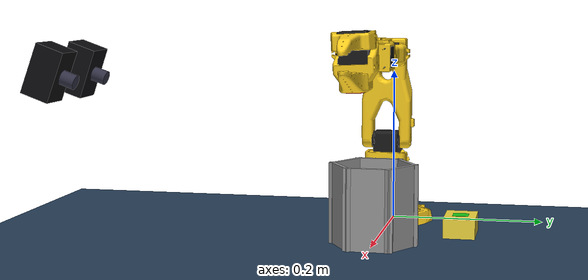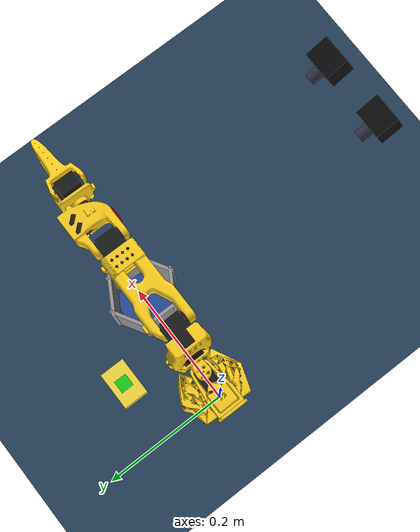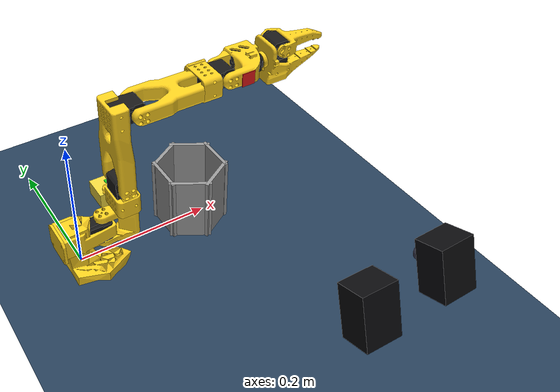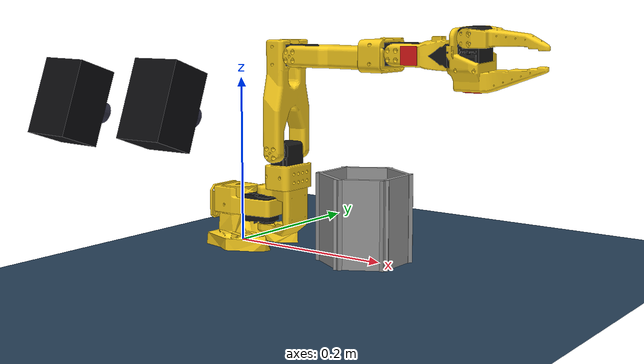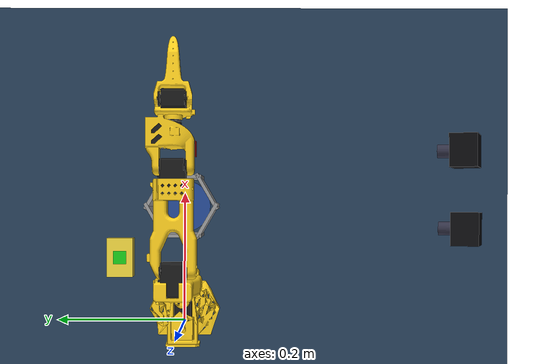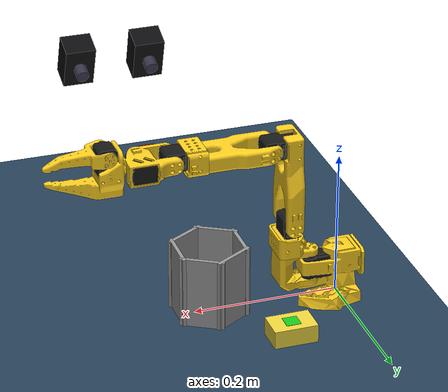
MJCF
<mujoco model="scene_pickplace">
  <include file="so101.xml" />

  <visual>
    <headlight diffuse="0.6 0.6 0.6" ambient="0.3 0.3 0.3" specular="0 0 0" />
    <rgba haze="0.15 0.25 0.35 1" />
    <global azimuth="160" elevation="-20" />
  </visual>

  <asset>
    <texture type="skybox" builtin="gradient" rgb1="0.3 0.5 0.7" rgb2="0 0 0" width="512"
        height="3072" />
    <texture type="2d" name="groundplane" builtin="checker" mark="edge" rgb1="0.2 0.3 0.4"
        rgb2="0.1 0.2 0.3"
        markrgb="0.8 0.8 0.8" width="300" height="300" />
    <material name="groundplane" texture="groundplane" texuniform="true" texrepeat="5 5"
        reflectance="0.2" />
  </asset>

  <worldbody>
    <light pos="0 0 3.5" dir="0 0 -1" directional="true" />
    <geom name="floor" size="0 0 0.05" pos="0 0 0" type="plane" material="groundplane" />

    <body name="cube" pos="0.10 0.10 0.0125">
      <freejoint name="cube_joint"/>
      <geom name="cube_geom" type="box" size="0.03 0.02 0.0125" mass="0.008"
          rgba="0.95 0.85 0.25 1" condim="6" friction="1.5 0.01 0.001"
          contype="1" conaffinity="1" solref="0.01 1"/>
      <site name="cube_tag" type="box" group="2" size="0.01 0.01 0.0005"
          pos="0 0 0.0125" euler="0 0 1.5708" rgba="0.1 0.8 0.1 1"/>
    </body>

    <!-- Place target: visual-only flat cylinder -->
    <site name="place_target" type="cylinder" size="0.04 0.01" pos="0.18 0 0.01"
        rgba="0.2 0.4 1 0.4"/>

    <!-- Hexagonal wall: 6 boxes, R=0.05, thickness=0.005, height=3cm -->
    <body name="ring" pos="0.18 0 0">
      <geom name="ring_wall_0" type="box" size="0.00250 0.03000 0.05" pos="-0.02165 0.03750 0.05" euler="0 0 -4.18879"
          rgba="0.6 0.6 0.6 1" contype="2" conaffinity="1"/>
      <geom name="ring_wall_1" type="box" size="0.00250 0.03000 0.05" pos="-0.04330 0.00000 0.05" euler="0 0 -3.14159"
          rgba="0.6 0.6 0.6 1" contype="2" conaffinity="1"/>
      <geom name="ring_wall_2" type="box" size="0.00250 0.03000 0.05" pos="-0.02165 -0.03750 0.05" euler="0 0 -2.09440"
          rgba="0.6 0.6 0.6 1" contype="2" conaffinity="1"/>
      <geom name="ring_wall_3" type="box" size="0.00250 0.03000 0.05" pos="0.02165 -0.03750 0.05" euler="0 0 -1.04720"
          rgba="0.6 0.6 0.6 1" contype="2" conaffinity="1"/>
      <geom name="ring_wall_4" type="box" size="0.00250 0.03000 0.05" pos="0.04330 0.00000 0.05" euler="0 0 0"
          rgba="0.6 0.6 0.6 1" contype="2" conaffinity="1"/>
      <geom name="ring_wall_5" type="box" size="0.00250 0.03000 0.05" pos="0.02165 0.03750 0.05" euler="0 0 1.04720"
          rgba="0.6 0.6 0.6 1" contype="2" conaffinity="1"/>
    </body>
  </worldbody>
</mujoco>

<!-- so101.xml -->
<mujoco model="so101">
  <option integrator="implicitfast" timestep="0.0066666667" cone="elliptic"
   iterations="10" ls_iterations="20" impratio="10"/>

  <compiler angle="radian" meshdir="assets" autolimits="true"/>

  <visual>
    <scale contactwidth="0.1" contactheight="0.05" forcewidth="0.02"
     framelength="0.75" framewidth="0.025" camera="0.2"/>
  </visual>

  <default>
    <mesh maxhullvert="128"/>

    <default class="so101">
      <joint damping="1" frictionloss="0.1" armature="0.005"/>
      <position kp="50"/>
      <default class="visual">
        <geom type="mesh" contype="0" conaffinity="0" group="2"/>
      </default>
      <default class="collision">
        <geom group="3" condim="3"/>
      </default>
      <default class="collision_gripper">
        <geom group="3" condim="6" friction="1.5 0.02 0.002" solref="0.01 1" priority="1"
         rgba="1.0 0 0 1.0" mass="0"/>
      </default>
      <default class="collision_gripper_mesh">
        <geom group="4" condim="6" friction="1.5 0.02 0.002" solref="0.01 1" priority="1"
         rgba="1.0 0 0 1.0" mass="0"/>
      </default>
    </default>

    <default class="sts3215">
      <geom contype="0" conaffinity="0"/>
      <joint damping="0.9581" frictionloss="0.0506" armature="0.00601"/>
      <position kv="1.5185" forcerange="-1.96 1.96" timeconst="0.005"/>
    </default>

    <default class="backlash">
      <joint damping="0.01" frictionloss="0" armature="0.01" limited="true" range="-0.0034907 0.0034907"/>
    </default>
  </default>

  <asset>
    <mesh file="waveshare_mounting_plate_so101_v2.stl"/>
    <mesh file="sts3215_03a_v1.stl"/>
    <mesh file="motor_holder_so101_base_v1.stl"/>
    <mesh file="wrist_roll_follower_so101_v1.stl"/>
    <mesh file="moving_jaw_so101_v1.stl"/>
    <mesh file="base_motor_holder_so101_v1.stl"/>
    <mesh file="upper_arm_so101_v1.stl"/>
    <mesh file="wrist_roll_pitch_so101_v2.stl"/>
    <mesh file="under_arm_so101_v1.stl"/>
    <mesh file="rotation_pitch_so101_v1.stl"/>
    <mesh file="motor_holder_so101_wrist_v1.stl"/>
    <mesh file="sts3215_03a_no_horn_v1.stl"/>
    <mesh file="base_so101_v2.stl"/>
    <mesh file="moving_jaw_so101_gripper_v1.stl"/>
    <!-- Gripper collision meshes. -->
    <mesh maxhullvert="64" file="wrist_roll_follower_so101_gripper_part0_v1.stl"/>
    <mesh maxhullvert="64" file="moving_jaw_so101_gripper_part0_v1.stl"/>
    <mesh maxhullvert="64" file="moving_jaw_so101_gripper_part1_v1.stl"/>
    <material name="base_motor_holder_so101_v1_material" rgba="1 0.82 0.12 1"/>
    <material name="base_so101_v2_material" rgba="1 0.82 0.12 1"/>
    <material name="sts3215_03a_v1_material" rgba="0.1 0.1 0.1 1"/>
    <material name="waveshare_mounting_plate_so101_v2_material" rgba="1 0.82 0.12 1"/>
    <material name="motor_holder_so101_base_v1_material" rgba="1 0.82 0.12 1"/>
    <material name="rotation_pitch_so101_v1_material" rgba="1 0.82 0.12 1"/>
    <material name="upper_arm_so101_v1_material" rgba="1 0.82 0.12 1"/>
    <material name="under_arm_so101_v1_material" rgba="1 0.82 0.12 1"/>
    <material name="motor_holder_so101_wrist_v1_material" rgba="1 0.82 0.12 1"/>
    <material name="sts3215_03a_no_horn_v1_material" rgba="0.1 0.1 0.1 1.0"/>
    <material name="wrist_roll_pitch_so101_v2_material" rgba="1 0.82 0.12 1"/>
    <material name="wrist_roll_follower_so101_v1_material" rgba="1 0.82 0.12 1"/>
    <material name="moving_jaw_so101_v1_material" rgba="1 0.82 0.12 1"/>
  </asset>

  <worldbody>
    <body name="tag_cam_mount" pos="0.150900 -0.386796 0.207672"
          quat="0.816264 0.577600 0.000976 -0.009526">
      <camera name="tag_cam"/>
      <geom name="tag_cam_body" type="box" size="0.022 0.032 0.018" group="1"
            rgba="0.05 0.05 0.06 1" contype="0" conaffinity="0"/>
      <geom name="tag_cam_lens" type="cylinder" size="0.009 0.012" pos="0 0 -0.024"
            group="1" rgba="0.2 0.2 0.28 1" contype="0" conaffinity="0"/>
    </body>
    <body name="tag_cam_aux_mount" pos="0.254350 -0.384744 0.210519"
          quat="0.819790 0.572651 0.000264 0.004032">
      <camera name="tag_cam_aux"/>
      <geom name="tag_cam_aux_body" type="box" size="0.022 0.032 0.018" group="1"
            rgba="0.05 0.05 0.06 1" contype="0" conaffinity="0"/>
      <geom name="tag_cam_aux_lens" type="cylinder" size="0.009 0.012" pos="0 0 -0.024"
            group="1" rgba="0.2 0.2 0.28 1" contype="0" conaffinity="0"/>
    </body>
    <!-- Link base -->
    <body name="base" pos="0 0 0" quat="1 0 0 0" childclass="so101">
      <inertial pos="0.0137179 -5.19711e-05 0.0334843" mass="0.147" fullinertia="0.000114686 0.000136117 0.000130364 -4.59787e-07 4.97151e-06 9.75275e-08"/>
      <!-- Part base_motor_holder_so101_v1 -->
      <geom type="mesh" class="visual" pos="-0.006365 -9.9e-05 -0.0024" quat="1 1 1 1" mesh="base_motor_holder_so101_v1" material="base_motor_holder_so101_v1_material"/>
      <!-- Part base_so101_v2 -->
      <geom type="mesh" class="visual" pos="-0.006365 0 -0.0024" quat="1 1 1 1" mesh="base_so101_v2" material="base_so101_v2_material"/>
      <!-- Part sts3215_03a_v1 -->
      <geom type="mesh" class="visual" pos="0.0263353 0 0.0437" quat="1 0 0 0" mesh="sts3215_03a_v1" material="sts3215_03a_v1_material"/>
      <!-- Part waveshare_mounting_plate_so101_v2 -->
      <geom type="mesh" class="visual" pos="-0.0309827 -0.000199 0.0474" quat="1 1 1 1" mesh="waveshare_mounting_plate_so101_v2" material="waveshare_mounting_plate_so101_v2_material"/>
      <!-- Frame baseframe -->
      <site group="3" name="baseframe" pos="0 0 0" quat="1 0 0 0"/>
      <!-- Link shoulder -->
      <body name="shoulder" pos="0.0388353 0 0.0624" quat="0 0 -1 0">
        <!-- Joint from base to shoulder -->
        <joint axis="0 0 1" name="shoulder_pan" type="hinge" range="-1.91986 1.91986" class="sts3215"/>
        <inertial pos="-0.0307604 -1.7e-05 -0.0252713" mass="0.100006" fullinertia="8.3759e-05 8.10403e-05 2.39783e-05 7.55525e-08 -1.16342e-06 1.54663e-07"/>
        <!-- Part sts3215_03a_v1_2 -->
        <geom type="mesh" class="visual" pos="-0.030399 0.000422 -0.0417" quat="1 1 1 -1" mesh="sts3215_03a_v1" material="sts3215_03a_v1_material"/>
        <geom type="box" class="collision" pos="-0.030399 0.000422 -0.0387" quat="1 1 1 -1" size="0.023 0.015 0.01"/>
        <!-- Part motor_holder_so101_base_v1 -->
        <geom type="mesh" class="visual" pos="-0.067599 -0.0001778 0.01585" quat="1 1 -1 1" mesh="motor_holder_so101_base_v1" material="motor_holder_so101_base_v1_material"/>
        <geom type="box" class="collision" pos="-0.025 0 0.0" quat="1 1 -1 1" size="0.038 0.025 0.02"/>
        <!-- Part rotation_pitch_so101_v1 -->
        <geom type="mesh" class="visual" pos="0.012201 2.2e-05 0.0464" quat="1 -1 0 0" mesh="rotation_pitch_so101_v1" material="rotation_pitch_so101_v1_material"/>
        <!-- Link upper_arm -->
        <body name="upper_arm" pos="-0.0303992 -0.0182778 -0.0542" quat="1 -1 -1 -1">
          <!-- Joint from shoulder to upper_arm -->
          <joint axis="0 0 1" name="shoulder_lift" type="hinge" range="-1.7453293 1.7453293" class="sts3215"/>
          <joint axis="0 0 1" name="shoulder_lift_play" class="backlash"/>
          <inertial pos="-0.089847 -0.008382 0.018409" mass="0.103" fullinertia="4.08002e-05 0.000147318 0.000142487 -1.97819e-05 -4.03016e-08 8.97326e-09"/>
          <!-- Part sts3215_03a_v1_3 -->
          <geom type="mesh" class="visual" pos="-0.11257 -0.0155 0.0187" quat="0 -1 1 0" mesh="sts3215_03a_v1" material="sts3215_03a_v1_material"/>
          <geom type="box" class="collision" pos="-0.06 0 0.02" quat="0 -1 1 0" size="0.01 0.07 0.03"/>
          <!-- Part upper_arm_so101_v1 -->
          <geom type="mesh" class="visual" pos="-0.065085 0.012 0.0182" quat="0 1 0 0" mesh="upper_arm_so101_v1" material="upper_arm_so101_v1_material"/>
          <geom type="box" class="collision" pos="-0.12 -0.014 0.0182" quat="0 1 0 0" size="0.01 0.02 0.015"/>
          <!-- Link lower_arm -->
          <body name="lower_arm" pos="-0.11257 -0.028 0" quat="1 0 0 1">
            <!-- Joint from upper_arm to lower_arm -->
            <!-- Note: 5-degree calibration offset applied to joint range -->
            <joint axis="0 0 1" name="elbow_flex" type="hinge" range="-1.69 1.69" class="sts3215"/>
            <joint axis="0 0 1" name="elbow_flex_play" class="backlash"/>
            <inertial pos="-0.098070 0.0032438 0.018283" mass="0.104" fullinertia="2.87438e-05 0.000159844 0.00014529 7.41152e-06 1.26409e-06 -4.90188e-08"/>
            <!-- Part under_arm_so101_v1 -->
            <geom type="mesh" class="visual" pos="-0.06485 -0.032 0.0182" quat="0 1 0 0" mesh="under_arm_so101_v1" material="under_arm_so101_v1_material"/>
            <geom type="box" class="collision" pos="-0.05 0 0.0182" quat="0 1 0 0" size="0.07 0.01 0.03"/>
            <!-- Part motor_holder_so101_wrist_v1 -->
            <geom type="mesh" class="visual" pos="-0.06485 -0.032 0.018" quat="0 -1 0 0" mesh="motor_holder_so101_wrist_v1" material="motor_holder_so101_wrist_v1_material"/>
            <geom type="box" class="collision" pos="-0.125 0.005 0.018" quat="0 -1 0 0" size="0.023 0.013 0.018"/>
            <!-- Part sts3215_03a_v1_4 -->
            <geom type="mesh" class="visual" pos="-0.1224 0.0052 0.0187" quat="0 0 1 0" mesh="sts3215_03a_v1" material="sts3215_03a_v1_material"/>
            <!-- Link wrist -->
            <body name="wrist" pos="-0.1349 0.0052 0" quat="1 0 0 -1">
              <!-- Joint from lower_arm to wrist -->
              <joint axis="0 0 1" name="wrist_flex" type="hinge" range="-1.658063 1.658063" class="sts3215"/>
              <joint axis="0 0 1" name="wrist_flex_play" class="backlash"/>
              <inertial pos="-0.000103312 -0.0386143 0.0281156" mass="0.079" fullinertia="3.68263e-05 2.5391e-05 2.1e-05 1.7893e-08 -5.28128e-08 3.6412e-06"/>
              <!-- Part sts3215_03a_no_horn_v1 -->
              <geom type="mesh" class="visual" pos="0 -0.0424 0.0306" quat="1 1 1 -1" mesh="sts3215_03a_no_horn_v1" material="sts3215_03a_no_horn_v1_material"/>
              <geom type="box" class="collision" pos="0 -0.0424 0.0256" quat="1 1 1 -1" size="0.029 0.015 0.018"/>
              <!-- Part wrist_roll_pitch_so101_v2 -->
              <geom type="mesh" class="visual" pos="0 -0.028 0.0181" quat="1 -1 -1 -1" mesh="wrist_roll_pitch_so101_v2" material="wrist_roll_pitch_so101_v2_material"/>
              <geom type="box" class="collision" pos="0 -0.02 0.0191" quat="1 -1 -1 -1" size="0.027 0.01 0.03"/>
              <site name="marker_wrist" type="box" group="2" size="0.01 0.01 0.0005"
                    pos="-9.37138e-05 -0.0222935 -0.0108401" quat="0 1 0 0" rgba="0.9 0.1 0.1 1"/>
              <!-- Link gripper -->
              <body name="gripper" pos="5.55112e-17 -0.0611 0.0181" quat="0.0172091 -0.0172091 0.706897 0.706897">
                <!-- Joint from wrist to gripper -->
                <joint axis="0 0 1" name="wrist_roll" type="hinge" range="-2.7438473 2.8412063" class="sts3215"/>
                <joint axis="0 0 1" name="wrist_roll_play" class="backlash"/>
                <inertial pos="0.000214 0.000245 -0.025187" mass="0.087" fullinertia="2.75087e-05 4.33657e-05 3.45059e-05 -3.35241e-07 -5.7352e-06 -5.17847e-08"/>
                <!-- Part sts3215_03a_v1_5 -->
                <geom type="mesh" class="visual" pos="0.0077 0.0001 -0.0234" quat="1 -1 0 0" mesh="sts3215_03a_v1" material="sts3215_03a_v1_material"/>
                <!-- Part wrist_roll_follower_so101_v1 (fixed jaw) -->
                <geom type="mesh" class="visual" pos="0 -0.000218 0.00095" quat="0 1 0 0" mesh="wrist_roll_follower_so101_v1" material="wrist_roll_follower_so101_v1_material"/>
                <geom type="box" class="collision" pos="0 -0.000218 0.00095" quat="0 1 0 0" size="0.01 0.01 0.018"/>
                <!-- Part wrist_roll_follower_so101_v1 gripper collision  -->
                <geom name="fixed_jaw_box1" class="collision_gripper" type="box" size="0.0325 0.015 0.015" pos="-0.0025 0 -0.022"/>
                <geom name="fixed_jaw_box2" class="collision_gripper" type="box" size="0.01 0.015 0.005" pos="-0.024 0 -0.04"/>
                <geom name="fixed_jaw_sph_tip1" class="collision_gripper" type="sphere" size="0.00075" pos="-0.0081 0 -0.101"/>
                <geom name="fixed_jaw_sph_tip2" class="collision_gripper" type="sphere" size="0.00075" pos="-0.0081 0.0035 -0.0975"/>
                <geom name="fixed_jaw_sph_tip3" class="collision_gripper" type="sphere" size="0.00075" pos="-0.0081 -0.0035 -0.0975"/>
                <geom type="mesh" class="collision_gripper_mesh" pos="0 -0.000218 0.00095" quat="0 1 0 0" mesh="wrist_roll_follower_so101_gripper_part0_v1"/>
                <geom name="fixed_jaw_box3" class="collision_gripper" type="capsule" size="0.0011 0.002" pos="-0.009 0 -0.103" euler="1.57 0 0"/>
                <geom name="fixed_jaw_box4" class="collision_gripper" type="box" size="0.001 0.004 0.004" pos="-0.009 0 -0.0982"/>
                <geom name="fixed_jaw_box5" class="collision_gripper" type="box" size="0.001 0.005 0.006" pos="-0.0108 0 -0.0905"/>
                <geom name="fixed_jaw_box6" class="collision_gripper" type="box" size="0.001 0.009 0.008" pos="-0.0125 0 -0.0727"/>
                <geom name="fixed_jaw_box7" class="collision_gripper" type="box" size="0.001 0.01 0.008" pos="-0.0143 0 -0.053"/>
                <site name="marker_finger" type="box" group="2" size="0.01 0.01 0.0005"
                      pos="-0.0359585 2.75695e-06 -0.0247098" quat="0.5 -0.5 -0.5 0.5"
                      rgba="0.9 0.1 0.1 1"/>
                <!-- Frame gripperframe -->
                <site group="3" name="gripperframe" pos="0.012 -0.000218 -0.098127" quat="1 0 1 0"/>
                <!-- Link moving_jaw_so101_v1 -->
                <body name="moving_jaw_so101_v1" pos="0.0202 0.0188 -0.0234" quat="1 1 0 0">
                  <!-- Joint from gripper to moving_jaw_so101_v1 -->
                  <joint axis="0 0 1" name="gripper" type="hinge" range="-0.174533 1.7453292" class="sts3215"/>
                  <inertial pos="-0.001575 -0.0300244 0.0192755" mass="0.012" fullinertia="6.61427e-06 1.89032e-06 5.28738e-06 -3.19807e-07 -5.90717e-09 -1.09945e-07"/>
                  <!-- Part moving_jaw_so101_v1 -->
                  <geom type="mesh" class="visual" pos="0 0 0.0189" quat="1 0 0 0" mesh="moving_jaw_so101_v1" material="moving_jaw_so101_v1_material"/>
                  <!-- Part moving_jaw_so101_v1 gripper collisions -->
                  <geom type="mesh" class="collision_gripper_mesh" pos="0 0 0.0189" quat="1 0 0 0" mesh="moving_jaw_so101_gripper_part0_v1"/>
                  <geom type="mesh" class="collision_gripper_mesh" pos="0 0 0.0189" quat="1 0 0 0" mesh="moving_jaw_so101_gripper_part1_v1"/>
                  <geom name="moving_jaw_box1" class="collision_gripper" type="box" size="0.01 0.01 0.015" pos="-0.0 -0.013 0.019"/>
                  <geom name="moving_jaw_sph_tip1" class="collision_gripper" type="sphere" size="0.00075" pos="-0.012 -0.078 0.0192"/>
                  <geom name="moving_jaw_sph_tip2" class="collision_gripper" type="sphere" size="0.00075" pos="-0.012 -0.0745 0.0225 "/>
                  <geom name="moving_jaw_sph_tip3" class="collision_gripper" type="sphere" size="0.00075" pos="-0.012 -0.0745 0.0155 "/>
                  <geom name="moving_jaw_box2" class="collision_gripper" type="box"  size="0.001 0.004 0.004" pos="-0.0113 -0.076 0.01875"/>
                  <geom name="moving_jaw_box3" class="collision_gripper" type="box"  size="0.001 0.005 0.006" pos="-0.0093 -0.067 0.01875"/>
                </body>
              </body>
            </body>
          </body>
        </body>
      </body>
    </body>
  </worldbody>

  <actuator>
    <position class="sts3215" name="shoulder_pan"  joint="shoulder_pan"  kp="15.37" ctrlrange="-1.91986 1.91986"/>
    <position class="sts3215" name="shoulder_lift" joint="shoulder_lift" kp="70.47" ctrlrange="-1.74533 1.74533"/>
    <position class="sts3215" name="elbow_flex"    joint="elbow_flex"    kp="53.35" ctrlrange="-1.69 1.69"/>
    <position class="sts3215" name="wrist_flex"    joint="wrist_flex"    kp="53.35" ctrlrange="-1.65806 1.65806"/>
    <position class="sts3215" name="wrist_roll"    joint="wrist_roll"    kp="53.35" ctrlrange="-2.74385 2.84121"/>
    <position class="sts3215" name="gripper"       joint="gripper"       kp="15.37" ctrlrange="-0.17453 1.74533"/>
  </actuator>
</mujoco>
